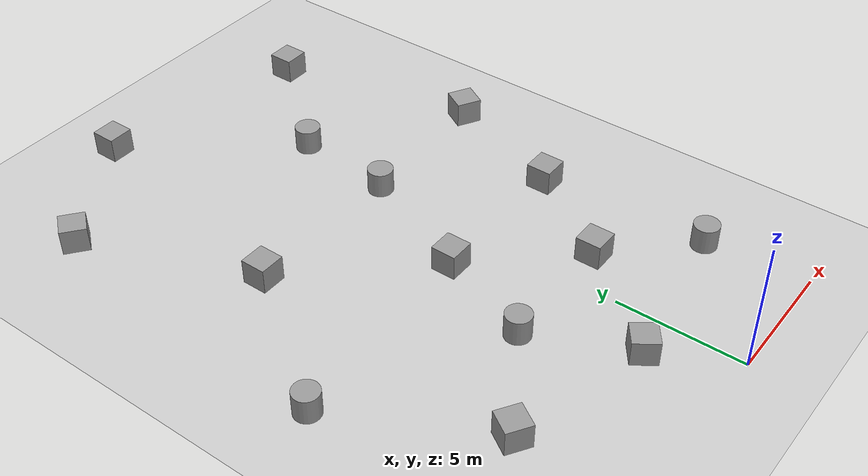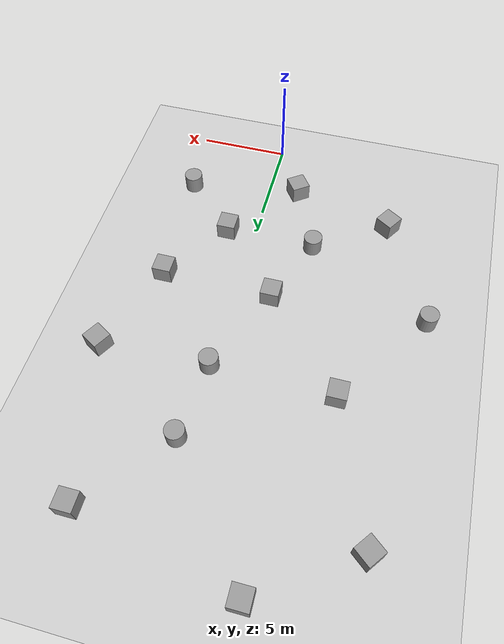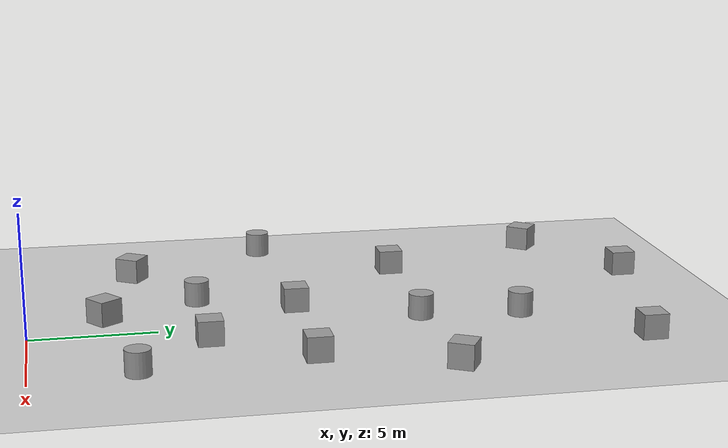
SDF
<sdf version="1.7">
 <world name="default">
  <light name="sun" type="directional">
   <pose>0 0 10 0 -0 0</pose>
   <diffuse>0.8 0.8 0.8 1</diffuse>
   <specular>0.2 0.2 0.2 1</specular>
   <attenuation>
    <range>1000</range>
    <constant>0.9</constant>
    <linear>0.01</linear>
    <quadratic>0.001</quadratic>
   </attenuation>
   <direction>-0.5 0.1 -0.9</direction>
   <spot><inner_angle>0</inner_angle><outer_angle>0</outer_angle><falloff>0</falloff></spot>
  </light>
  <model name="ground_plane">
   <static>1</static>
   <link name="link">
    <collision name="collision">
     <geometry><plane><normal>0 0 1</normal><size>100 100</size></plane></geometry>
     <surface><friction><ode><mu>100</mu><mu2>50</mu2></ode></friction></surface>
    </collision>
    <visual name="visual">
     <cast_shadows>0</cast_shadows>
     <geometry><plane><normal>0 0 1</normal><size>100 100</size></plane></geometry>
     <material>
      <script><uri>file://media/materials/scripts/gazebo.material</uri><name>Gazebo/Grey</name></script>
     </material>
    </visual>
   </link>
  </model>
  <gravity>0 0 -9.8</gravity>
  <magnetic_field>6e-06 2.3e-05 -4.2e-05</magnetic_field>
  <atmosphere type="adiabatic"/>
  <physics type="ode">
   <max_step_size>0.001</max_step_size>
   <real_time_factor>1</real_time_factor>
   <real_time_update_rate>1000</real_time_update_rate>
  </physics>
  <scene><ambient>0.4 0.4 0.4 1</ambient><background>0.7 0.7 0.7 1</background><shadows>1</shadows></scene>
  <spherical_coordinates>
   <surface_model>EARTH_WGS84</surface_model>
   <latitude_deg>0</latitude_deg>
   <longitude_deg>0</longitude_deg>
   <elevation>0</elevation>
   <heading_deg>0</heading_deg>
  </spherical_coordinates>
  <model name="unit_box">
   <pose>-1.66416 3.01834 0.5 0 -0 0.628744</pose>
   <link name="link">
    <inertial>
     <mass>1</mass>
     <inertia>
      <ixx>0.166667</ixx>
      <ixy>0</ixy>
      <ixz>0</ixz>
      <iyy>0.166667</iyy>
      <iyz>0</iyz>
      <izz>0.166667</izz>
     </inertia>
    </inertial>
    <collision name="collision"><geometry><box><size>1 1 1</size></box></geometry></collision>
    <visual name="visual">
     <geometry><box><size>1 1 1</size></box></geometry>
     <material>
      <script><name>Gazebo/Grey</name><uri>file://media/materials/scripts/gazebo.material</uri></script>
     </material>
    </visual>
   </link>
  </model>
  <model name="unit_box_0">
   <pose>1.54623 6.85128 0.499995 0 1e-05 0</pose>
   <link name="link">
    <inertial>
     <mass>1</mass>
     <inertia>
      <ixx>0.166667</ixx>
      <ixy>0</ixy>
      <ixz>0</ixz>
      <iyy>0.166667</iyy>
      <iyz>0</iyz>
      <izz>0.166667</izz>
     </inertia>
    </inertial>
    <collision name="collision"><geometry><box><size>1 1 1</size></box></geometry></collision>
    <visual name="visual">
     <geometry><box><size>1 1 1</size></box></geometry>
     <material>
      <script><name>Gazebo/Grey</name><uri>file://media/materials/scripts/gazebo.material</uri></script>
     </material>
    </visual>
   </link>
  </model>
  <model name="unit_cylinder">
   <pose>-3.38082 6.83674 0.499994 -3e-06 -3e-06 0</pose>
   <link name="link">
    <inertial>
     <mass>1</mass>
     <inertia><ixx>0.145833</ixx><ixy>0</ixy><ixz>0</ixz><iyy>0.145833</iyy><iyz>0</iyz><izz>0.125</izz></inertia>
    </inertial>
    <collision name="collision">
     <geometry><cylinder><radius>0.5</radius><length>1</length></cylinder></geometry>
    </collision>
    <visual name="visual">
     <geometry><cylinder><radius>0.5</radius><length>1</length></cylinder></geometry>
     <material>
      <script><name>Gazebo/Grey</name><uri>file://media/materials/scripts/gazebo.material</uri></script>
     </material>
    </visual>
   </link>
  </model>
  <model name="unit_cylinder_0">
   <pose>4.51628 3.96318 0.499998 3e-06 -2e-06 0</pose>
   <link name="link">
    <inertial>
     <mass>1</mass>
     <inertia><ixx>0.145833</ixx><ixy>0</ixy><ixz>0</ixz><iyy>0.145833</iyy><iyz>0</iyz><izz>0.125</izz></inertia>
    </inertial>
    <collision name="collision">
     <geometry><cylinder><radius>0.5</radius><length>1</length></cylinder></geometry>
    </collision>
    <visual name="visual">
     <geometry><cylinder><radius>0.5</radius><length>1</length></cylinder></geometry>
     <material>
      <script><name>Gazebo/Grey</name><uri>file://media/materials/scripts/gazebo.material</uri></script>
     </material>
    </visual>
   </link>
  </model>
  <model name="unit_box_1">
   <pose>4.06174 10.5852 0.5 0 -0 0</pose>
   <link name="link">
    <inertial>
     <mass>1</mass>
     <inertia>
      <ixx>0.166667</ixx>
      <ixy>0</ixy>
      <ixz>0</ixz>
      <iyy>0.166667</iyy>
      <iyz>0</iyz>
      <izz>0.166667</izz>
     </inertia>
    </inertial>
    <collision name="collision"><geometry><box><size>1 1 1</size></box></geometry></collision>
    <visual name="visual">
     <geometry><box><size>1 1 1</size></box></geometry>
     <material>
      <script><name>Gazebo/Grey</name><uri>file://media/materials/scripts/gazebo.material</uri></script>
     </material>
    </visual>
   </link>
  </model>
  <model name="unit_box_2">
   <pose>-1.94341 10.665 0.499995 0 1e-05 0</pose>
   <link name="link">
    <inertial>
     <mass>1</mass>
     <inertia>
      <ixx>0.166667</ixx>
      <ixy>0</ixy>
      <ixz>0</ixz>
      <iyy>0.166667</iyy>
      <iyz>0</iyz>
      <izz>0.166667</izz>
     </inertia>
    </inertial>
    <collision name="collision"><geometry><box><size>1 1 1</size></box></geometry></collision>
    <visual name="visual">
     <geometry><box><size>1 1 1</size></box></geometry>
     <material>
      <script><name>Gazebo/Grey</name><uri>file://media/materials/scripts/gazebo.material</uri></script>
     </material>
    </visual>
   </link>
  </model>
  <model name="unit_box_3">
   <pose>5.82902 15.6637 0.5 0 -0 1.05451</pose>
   <link name="link">
    <inertial>
     <mass>1</mass>
     <inertia>
      <ixx>0.166667</ixx>
      <ixy>0</ixy>
      <ixz>0</ixz>
      <iyy>0.166667</iyy>
      <iyz>0</iyz>
      <izz>0.166667</izz>
     </inertia>
    </inertial>
    <collision name="collision"><geometry><box><size>1 1 1</size></box></geometry></collision>
    <visual name="visual">
     <geometry><box><size>1 1 1</size></box></geometry>
     <material>
      <script><name>Gazebo/Grey</name><uri>file://media/materials/scripts/gazebo.material</uri></script>
     </material>
    </visual>
   </link>
  </model>
  <model name="unit_cylinder_1">
   <pose>0.035701 15.4345 0.499993 -3e-06 -4e-06 -0</pose>
   <link name="link">
    <inertial>
     <mass>1</mass>
     <inertia><ixx>0.145833</ixx><ixy>0</ixy><ixz>0</ixz><iyy>0.145833</iyy><iyz>0</iyz><izz>0.125</izz></inertia>
    </inertial>
    <collision name="collision">
     <geometry><cylinder><radius>0.5</radius><length>1</length></cylinder></geometry>
    </collision>
    <visual name="visual">
     <geometry><cylinder><radius>0.5</radius><length>1</length></cylinder></geometry>
     <material>
      <script><name>Gazebo/Grey</name><uri>file://media/materials/scripts/gazebo.material</uri></script>
     </material>
    </visual>
   </link>
  </model>
  <model name="unit_cylinder_2">
   <pose>0.425728 19.4303 0.499992 -3e-06 3e-06 0</pose>
   <link name="link">
    <inertial>
     <mass>1</mass>
     <inertia><ixx>0.145833</ixx><ixy>0</ixy><ixz>0</ixz><iyy>0.145833</iyy><iyz>0</iyz><izz>0.125</izz></inertia>
    </inertial>
    <collision name="collision">
     <geometry><cylinder><radius>0.5</radius><length>1</length></cylinder></geometry>
    </collision>
    <visual name="visual">
     <geometry><cylinder><radius>0.5</radius><length>1</length></cylinder></geometry>
     <material>
      <script><name>Gazebo/Grey</name><uri>file://media/materials/scripts/gazebo.material</uri></script>
     </material>
    </visual>
   </link>
  </model>
  <model name="unit_box_4">
   <pose>-6.46678 15.5361 0.499995 0 1e-05 0</pose>
   <link name="link">
    <inertial>
     <mass>1</mass>
     <inertia>
      <ixx>0.166667</ixx>
      <ixy>0</ixy>
      <ixz>0</ixz>
      <iyy>0.166667</iyy>
      <iyz>0</iyz>
      <izz>0.166667</izz>
     </inertia>
    </inertial>
    <collision name="collision"><geometry><box><size>1 1 1</size></box></geometry></collision>
    <visual name="visual">
     <geometry><box><size>1 1 1</size></box></geometry>
     <material>
      <script><name>Gazebo/Grey</name><uri>file://media/materials/scripts/gazebo.material</uri></script>
     </material>
    </visual>
   </link>
  </model>
  <model name="unit_box_5">
   <pose>-9.11542 22.3538 0.499995 -0 9e-06 0.903858</pose>
   <link name="link">
    <inertial>
     <mass>1</mass>
     <inertia>
      <ixx>0.166667</ixx>
      <ixy>0</ixy>
      <ixz>0</ixz>
      <iyy>0.166667</iyy>
      <iyz>0</iyz>
      <izz>0.166667</izz>
     </inertia>
    </inertial>
    <collision name="collision"><geometry><box><size>1 1 1</size></box></geometry></collision>
    <visual name="visual">
     <geometry><box><size>1 1 1</size></box></geometry>
     <material>
      <script><name>Gazebo/Grey</name><uri>file://media/materials/scripts/gazebo.material</uri></script>
     </material>
    </visual>
   </link>
  </model>
  <model name="unit_box_6">
   <pose>-7.25952 4.43272 0.499999 -5e-06 -4e-06 -0.568263</pose>
   <link name="link">
    <inertial>
     <mass>1</mass>
     <inertia>
      <ixx>0.166667</ixx>
      <ixy>0</ixy>
      <ixz>0</ixz>
      <iyy>0.166667</iyy>
      <iyz>0</iyz>
      <izz>0.166667</izz>
     </inertia>
    </inertial>
    <collision name="collision"><geometry><box><size>1 1 1</size></box></geometry></collision>
    <visual name="visual">
     <geometry><box><size>1 1 1</size></box></geometry>
     <material>
      <script><name>Gazebo/Grey</name><uri>file://media/materials/scripts/gazebo.material</uri></script>
     </material>
    </visual>
   </link>
  </model>
  <model name="unit_cylinder_3">
   <pose>-10.2068 10.2468 0.499993 -3e-06 -3e-06 0</pose>
   <link name="link">
    <inertial>
     <mass>1</mass>
     <inertia><ixx>0.145833</ixx><ixy>0</ixy><ixz>0</ixz><iyy>0.145833</iyy><iyz>0</iyz><izz>0.125</izz></inertia>
    </inertial>
    <collision name="collision">
     <geometry><cylinder><radius>0.5</radius><length>1</length></cylinder></geometry>
    </collision>
    <visual name="visual">
     <geometry><cylinder><radius>0.5</radius><length>1</length></cylinder></geometry>
     <material>
      <script><name>Gazebo/Grey</name><uri>file://media/materials/scripts/gazebo.material</uri></script>
     </material>
    </visual>
   </link>
  </model>
  <model name="unit_box_7">
   <pose>-4.41132 25.4114 0.499995 -1e-05 0 0</pose>
   <link name="link">
    <inertial>
     <mass>1</mass>
     <inertia>
      <ixx>0.166667</ixx>
      <ixy>0</ixy>
      <ixz>0</ixz>
      <iyy>0.166667</iyy>
      <iyz>0</iyz>
      <izz>0.166667</izz>
     </inertia>
    </inertial>
    <collision name="collision"><geometry><box><size>1 1 1</size></box></geometry></collision>
    <visual name="visual">
     <geometry><box><size>1 1 1</size></box></geometry>
     <material>
      <script><name>Gazebo/Grey</name><uri>file://media/materials/scripts/gazebo.material</uri></script>
     </material>
    </visual>
   </link>
  </model>
  <model name="unit_box_8">
   <pose>3.94964 23.6097 0.499995 -1e-05 -0 0</pose>
   <link name="link">
    <inertial>
     <mass>1</mass>
     <inertia>
      <ixx>0.166667</ixx>
      <ixy>0</ixy>
      <ixz>0</ixz>
      <iyy>0.166667</iyy>
      <iyz>0</iyz>
      <izz>0.166667</izz>
     </inertia>
    </inertial>
    <collision name="collision"><geometry><box><size>1 1 1</size></box></geometry></collision>
    <visual name="visual">
     <geometry><box><size>1 1 1</size></box></geometry>
     <material>
      <script><name>Gazebo/Grey</name><uri>file://media/materials/scripts/gazebo.material</uri></script>
     </material>
    </visual>
   </link>
  </model>
 </world>
</sdf>
